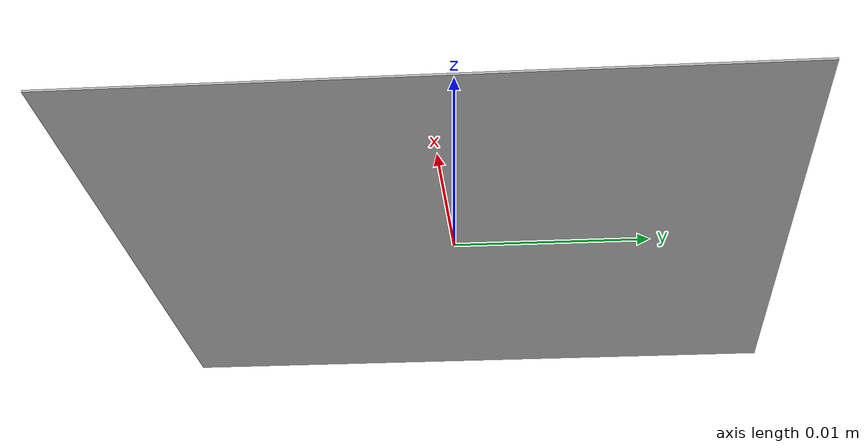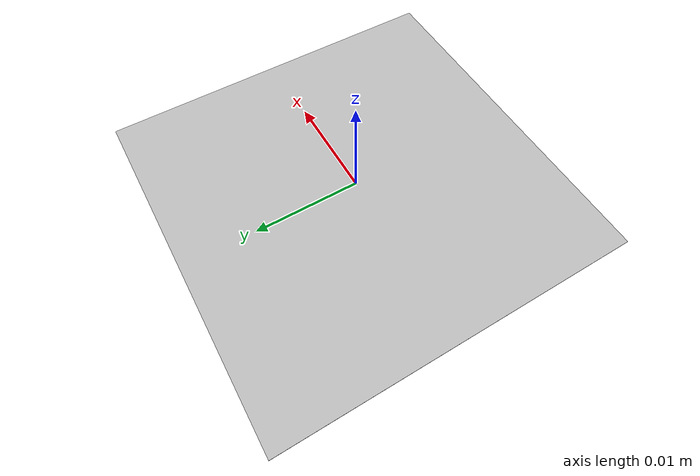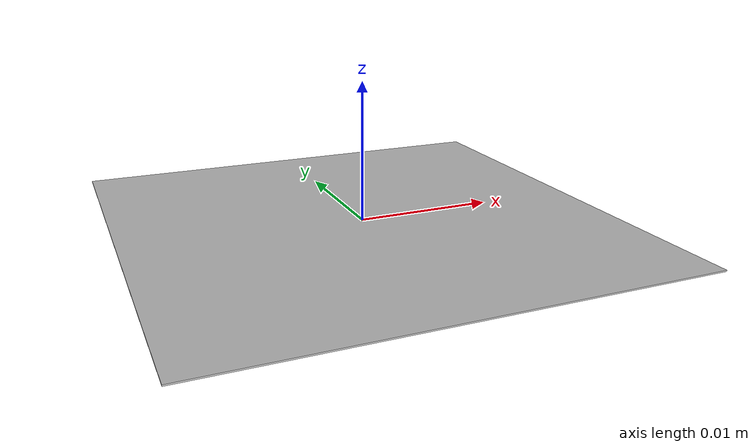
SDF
<?xml version="1.0"?>
<sdf version="1.6">
  <model name="apriltag_model">
    <static>false</static>
    <link name="link">
      <pose>0 0 0 0 0 0</pose>
      <collision name="collision">
        <geometry>
          <box>
            <size>0.034 0.034 0.0001</size>
          </box>
        </geometry>
      </collision>
      <visual name="visual">
        <geometry>
          <box>
            <size>0.034 0.034 0.0001</size>
          </box>
        </geometry>
        <material>
          <script>
            <uri>model://apriltag_model/materials/scripts</uri>
            <uri>model://apriltag_model/materials/textures</uri>
            <name>apriltag_model</name>
          </script>
          <texture>
            <diffuse>model://apriltag_model/materials/textures/apriltag_image.png</diffuse>
          </texture>
        </material>
      </visual>
    </link>
  </model>
</sdf>
